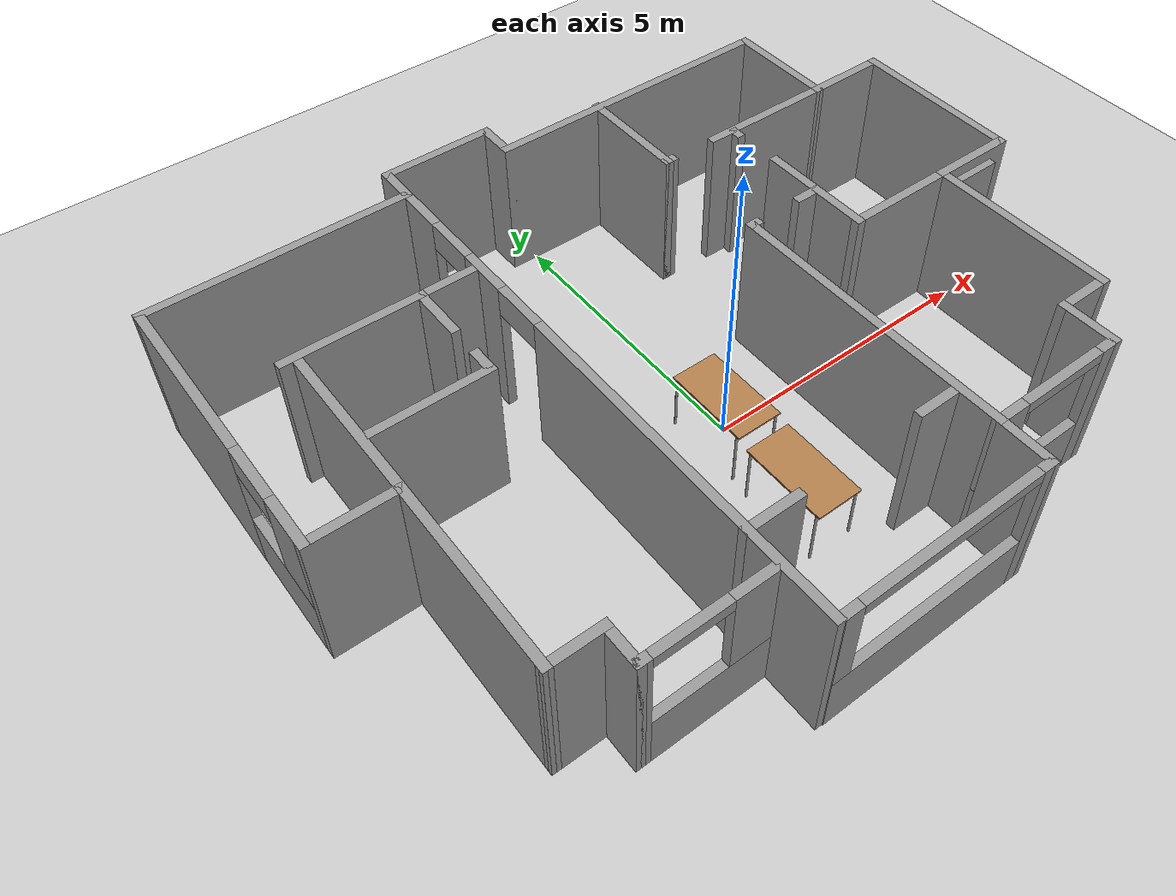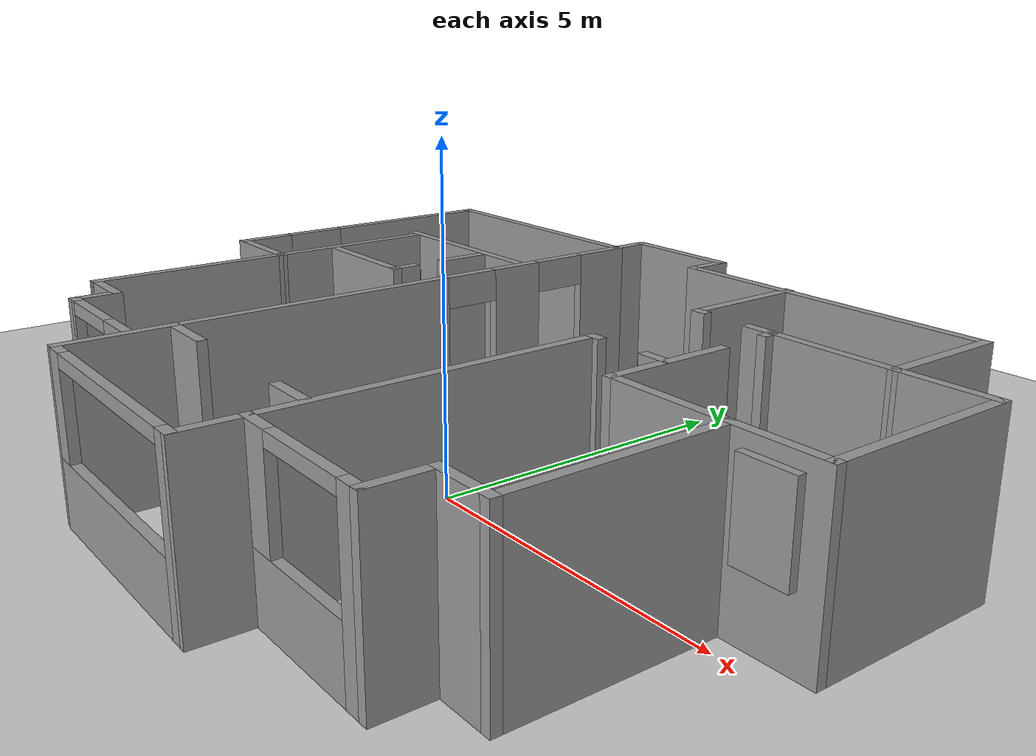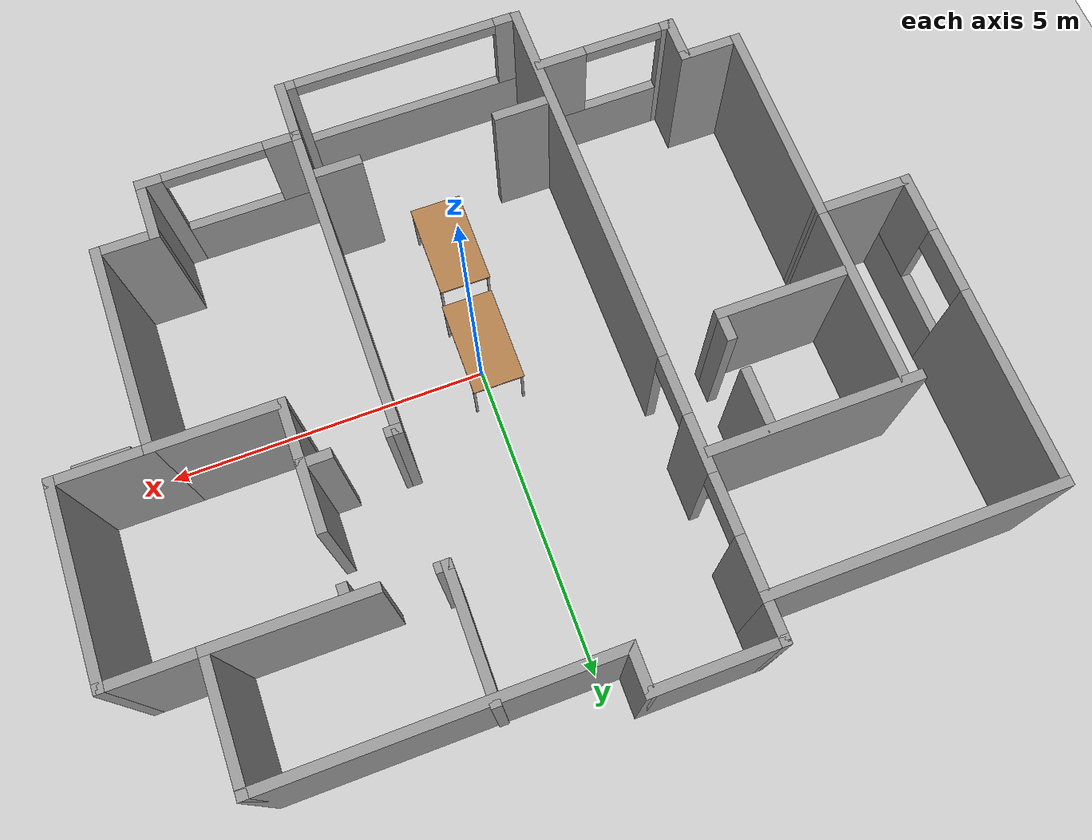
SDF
<sdf version="1.7">
 <world name="default">
  <light name="sun" type="directional">
   <pose>0 0 10 0 -0 0</pose>
   <diffuse>0.8 0.8 0.8 1</diffuse>
   <specular>0.2 0.2 0.2 1</specular>
   <attenuation>
    <range>1000</range>
    <constant>0.9</constant>
    <linear>0.01</linear>
    <quadratic>0.001</quadratic>
   </attenuation>
   <direction>-0.5 0.1 -0.9</direction>
   <spot><inner_angle>0</inner_angle><outer_angle>0</outer_angle><falloff>0</falloff></spot>
  </light>
  <model name="ground_plane">
   <static>1</static>
   <link name="link">
    <collision name="collision">
     <geometry><plane><normal>0 0 1</normal><size>100 100</size></plane></geometry>
     <surface>
      <contact><collide_bitmask>65535</collide_bitmask></contact>
      <friction><ode><mu>100</mu><mu2>50</mu2></ode></friction>
     </surface>
    </collision>
    <visual name="visual">
     <cast_shadows>0</cast_shadows>
     <geometry><plane><normal>0 0 1</normal><size>100 100</size></plane></geometry>
     <material>
      <script><uri>file://media/materials/scripts/gazebo.material</uri><name>Gazebo/Grey</name></script>
     </material>
    </visual>
   </link>
  </model>
  <gravity>0 0 -9.8</gravity>
  <magnetic_field>6e-06 2.3e-05 -4.2e-05</magnetic_field>
  <atmosphere type="adiabatic"/>
  <physics type="ode">
   <max_step_size>0.001</max_step_size>
   <real_time_factor>1</real_time_factor>
   <real_time_update_rate>1000</real_time_update_rate>
  </physics>
  <scene><ambient>0.4 0.4 0.4 1</ambient><background>0.7 0.7 0.7 1</background><shadows>1</shadows></scene>
  <spherical_coordinates>
   <surface_model>EARTH_WGS84</surface_model>
   <latitude_deg>0</latitude_deg>
   <longitude_deg>0</longitude_deg>
   <elevation>0</elevation>
   <heading_deg>0</heading_deg>
  </spherical_coordinates>
  <model name="room1">
   <pose>-0.261732 0.632607 0 0 -0 0</pose>
   <link name="Wall_0">
    <collision name="Wall_0_Collision">
     <geometry><box><size>4.5 0.15 2.5</size></box></geometry>
     <pose>0 0 1.25 0 -0 0</pose>
    </collision>
    <visual name="Wall_0_Visual">
     <pose>0 0 1.25 0 -0 0</pose>
     <geometry><box><size>4.5 0.15 2.5</size></box></geometry>
     <material>
      <script><uri>file://media/materials/scripts/gazebo.material</uri><name>Gazebo/Grey</name></script>
      <ambient>1 1 1 1</ambient>
     </material>
     <meta><layer>0</layer></meta>
    </visual>
    <pose>-4.14998 4.45739 0 0 -0 0</pose>
   </link>
   <link name="Wall_1">
    <collision name="Wall_1_Collision">
     <geometry><box><size>0.75 0.15 2.5</size></box></geometry>
     <pose>0 0 1.25 0 -0 0</pose>
    </collision>
    <visual name="Wall_1_Visual">
     <pose>0 0 1.25 0 -0 0</pose>
     <geometry><box><size>0.75 0.15 2.5</size></box></geometry>
     <material>
      <script><uri>file://media/materials/scripts/gazebo.material</uri><name>Gazebo/Grey</name></script>
      <ambient>1 1 1 1</ambient>
     </material>
     <meta><layer>0</layer></meta>
    </visual>
    <pose>-1.97498 4.75739 0 0 -0 1.5708</pose>
   </link>
   <link name="Wall_10">
    <collision name="Wall_10_Collision">
     <geometry><box><size>1 0.15 2.5</size></box></geometry>
     <pose>0 0 1.25 0 -0 0</pose>
    </collision>
    <visual name="Wall_10_Visual">
     <pose>0 0 1.25 0 -0 0</pose>
     <geometry><box><size>1 0.15 2.5</size></box></geometry>
     <material>
      <script><uri>file://media/materials/scripts/gazebo.material</uri><name>Gazebo/Grey</name></script>
      <ambient>1 1 1 1</ambient>
     </material>
     <meta><layer>0</layer></meta>
    </visual>
    <pose>4.55002 -3.34261 0 0 -0 3.14159</pose>
   </link>
   <link name="Wall_11">
    <collision name="Wall_11_Collision">
     <geometry><box><size>1 0.15 2.5</size></box></geometry>
     <pose>0 0 1.25 0 -0 0</pose>
    </collision>
    <visual name="Wall_11_Visual">
     <pose>0 0 1.25 0 -0 0</pose>
     <geometry><box><size>1 0.15 2.5</size></box></geometry>
     <material>
      <script><uri>file://media/materials/scripts/gazebo.material</uri><name>Gazebo/Grey</name></script>
      <ambient>1 1 1 1</ambient>
     </material>
     <meta><layer>0</layer></meta>
    </visual>
    <pose>4.12502 -3.76762 0 0 -0 -1.5708</pose>
   </link>
   <link name="Wall_12">
    <pose>2.95002 -4.19261 0 0 -0 3.14159</pose>
    <visual name="Wall_12_Visual_0">
     <pose>-1.05204 0 1.25 0 -0 0</pose>
     <geometry><box><size>0.395914 0.15 2.5</size></box></geometry>
     <material>
      <script><uri>file://media/materials/scripts/gazebo.material</uri><name>Gazebo/Grey</name></script>
      <ambient>1 1 1 1</ambient>
     </material>
     <meta><layer>0</layer></meta>
    </visual>
    <collision name="Wall_12_Collision_0">
     <geometry><box><size>0.395914 0.15 2.5</size></box></geometry>
     <pose>-1.05204 0 1.25 0 -0 0</pose>
    </collision>
    <visual name="Wall_12_Visual_1">
     <pose>0.197957 0 0.5 0 -0 0</pose>
     <geometry><box><size>2.10409 0.15 1</size></box></geometry>
     <material>
      <script><uri>file://media/materials/scripts/gazebo.material</uri><name>Gazebo/Grey</name></script>
      <ambient>1 1 1 1</ambient>
     </material>
     <meta><layer>0</layer></meta>
    </visual>
    <collision name="Wall_12_Collision_1">
     <geometry><box><size>2.10409 0.15 1</size></box></geometry>
     <pose>0.197957 0 0.5 0 -0 0</pose>
    </collision>
    <visual name="Wall_12_Visual_2">
     <pose>0.961644 0 1.75 0 -0 0</pose>
     <geometry><box><size>0.576711 0.15 1.5</size></box></geometry>
     <material>
      <script><uri>file://media/materials/scripts/gazebo.material</uri><name>Gazebo/Grey</name></script>
      <ambient>1 1 1 1</ambient>
     </material>
     <meta><layer>0</layer></meta>
    </visual>
    <collision name="Wall_12_Collision_2">
     <geometry><box><size>0.576711 0.15 1.5</size></box></geometry>
     <pose>0.961644 0 1.75 0 -0 0</pose>
    </collision>
    <visual name="Wall_12_Visual_3">
     <pose>-0.090399 0 2.4 0 -0 0</pose>
     <geometry><box><size>1.52737 0.15 0.2</size></box></geometry>
     <material>
      <script><uri>file://media/materials/scripts/gazebo.material</uri><name>Gazebo/Grey</name></script>
      <ambient>1 1 1 1</ambient>
     </material>
     <meta><layer>0</layer></meta>
    </visual>
    <collision name="Wall_12_Collision_3">
     <geometry><box><size>1.52737 0.15 0.2</size></box></geometry>
     <pose>-0.090399 0 2.4 0 -0 0</pose>
    </collision>
   </link>
   <link name="Wall_13">
    <collision name="Wall_13_Collision">
     <geometry><box><size>5 0.15 2.5</size></box></geometry>
     <pose>0 0 1.25 0 -0 0</pose>
    </collision>
    <visual name="Wall_13_Visual">
     <pose>0 0 1.25 0 -0 0</pose>
     <geometry><box><size>5 0.15 2.5</size></box></geometry>
     <material>
      <script><uri>file://media/materials/scripts/gazebo.material</uri><name>Gazebo/Grey</name></script>
      <ambient>1 1 1 1</ambient>
     </material>
     <meta><layer>0</layer></meta>
    </visual>
    <pose>1.77502 -1.76761 0 0 -0 1.5708</pose>
   </link>
   <link name="Wall_14">
    <collision name="Wall_14_Collision">
     <geometry><box><size>0.25 0.15 2.5</size></box></geometry>
     <pose>0 0 1.25 0 -0 0</pose>
    </collision>
    <visual name="Wall_14_Visual">
     <pose>0 0 1.25 0 -0 0</pose>
     <geometry><box><size>0.25 0.15 2.5</size></box></geometry>
     <material>
      <script><uri>file://media/materials/scripts/gazebo.material</uri><name>Gazebo/Grey</name></script>
      <ambient>1 1 1 1</ambient>
     </material>
     <meta><layer>0</layer></meta>
    </visual>
    <pose>1.82502 0.657385 0 0 -0 0</pose>
   </link>
   <link name="Wall_16">
    <collision name="Wall_16_Collision">
     <geometry><box><size>2 0.15 2.5</size></box></geometry>
     <pose>0 0 1.25 0 -0 0</pose>
    </collision>
    <visual name="Wall_16_Visual">
     <pose>0 0 1.25 0 -0 0</pose>
     <geometry><box><size>2 0.15 2.5</size></box></geometry>
     <material>
      <script><uri>file://media/materials/scripts/gazebo.material</uri><name>Gazebo/Grey</name></script>
      <ambient>1 1 1 1</ambient>
     </material>
     <meta><layer>0</layer></meta>
    </visual>
    <pose>1.72806 3.56594 0 0 -0 -1.5708</pose>
   </link>
   <link name="Wall_17">
    <collision name="Wall_17_Collision">
     <geometry><box><size>0.25 0.15 2.5</size></box></geometry>
     <pose>0 0 1.25 0 -0 0</pose>
    </collision>
    <visual name="Wall_17_Visual">
     <pose>0 0 1.25 0 -0 0</pose>
     <geometry><box><size>0.25 0.15 2.5</size></box></geometry>
     <material>
      <script><uri>file://media/materials/scripts/gazebo.material</uri><name>Gazebo/Grey</name></script>
      <ambient>1 1 1 1</ambient>
     </material>
     <meta><layer>0</layer></meta>
    </visual>
    <pose>1.77807 2.64094 0 0 -0 0</pose>
   </link>
   <link name="Wall_19">
    <collision name="Wall_19_Collision">
     <geometry><box><size>2.43884 0.15 2.5</size></box></geometry>
     <pose>0 0 1.25 0 -0 0</pose>
    </collision>
    <visual name="Wall_19_Visual">
     <pose>0 0 1.25 0 -0 0</pose>
     <geometry><box><size>2.43884 0.15 2.5</size></box></geometry>
     <material>
      <script><uri>file://media/materials/scripts/gazebo.material</uri><name>Gazebo/Grey</name></script>
      <ambient>1 1 1 1</ambient>
     </material>
     <meta><layer>0</layer></meta>
    </visual>
    <pose>3.83062 2.61382 0 0 -0 -0.005626</pose>
   </link>
   <link name="Wall_2">
    <collision name="Wall_2_Collision">
     <geometry><box><size>2 0.15 2.5</size></box></geometry>
     <pose>0 0 1.25 0 -0 0</pose>
    </collision>
    <visual name="Wall_2_Visual">
     <pose>0 0 1.25 0 -0 0</pose>
     <geometry><box><size>2 0.15 2.5</size></box></geometry>
     <material>
      <script><uri>file://media/materials/scripts/gazebo.material</uri><name>Gazebo/Grey</name></script>
      <ambient>1 1 1 1</ambient>
     </material>
     <meta><layer>0</layer></meta>
    </visual>
    <pose>-1.04998 5.05739 0 0 -0 0</pose>
   </link>
   <link name="Wall_21">
    <collision name="Wall_21_Collision">
     <geometry><box><size>2 0.15 2.5</size></box></geometry>
     <pose>0 0 1.25 0 -0 0</pose>
    </collision>
    <visual name="Wall_21_Visual">
     <pose>0 0 1.25 0 -0 0</pose>
     <geometry><box><size>2 0.15 2.5</size></box></geometry>
     <material>
      <script><uri>file://media/materials/scripts/gazebo.material</uri><name>Gazebo/Grey</name></script>
      <ambient>1 1 1 1</ambient>
     </material>
     <meta><layer>0</layer></meta>
    </visual>
    <pose>4.05002 -0.242615 0 0 -0 3.14159</pose>
   </link>
   <link name="Wall_22">
    <collision name="Wall_22_Collision">
     <geometry><box><size>2 0.15 2.5</size></box></geometry>
     <pose>0 0 1.25 0 -0 0</pose>
    </collision>
    <visual name="Wall_22_Visual">
     <pose>0 0 1.25 0 -0 0</pose>
     <geometry><box><size>2 0.15 2.5</size></box></geometry>
     <material>
      <script><uri>file://media/materials/scripts/gazebo.material</uri><name>Gazebo/Grey</name></script>
      <ambient>1 1 1 1</ambient>
     </material>
     <meta><layer>0</layer></meta>
    </visual>
    <pose>3.12502 0.682385 0 0 -0 1.5708</pose>
   </link>
   <link name="Wall_25">
    <collision name="Wall_25_Collision">
     <geometry><box><size>0.25 0.15 2.5</size></box></geometry>
     <pose>0 0 1.25 0 -0 0</pose>
    </collision>
    <visual name="Wall_25_Visual">
     <pose>0 0 1.25 0 -0 0</pose>
     <geometry><box><size>0.25 0.15 2.5</size></box></geometry>
     <material>
      <script><uri>file://media/materials/scripts/gazebo.material</uri><name>Gazebo/Grey</name></script>
      <ambient>1 1 1 1</ambient>
     </material>
     <meta><layer>0</layer></meta>
    </visual>
    <pose>3.08578 2.51896 0 0 -0 -1.5708</pose>
   </link>
   <link name="Wall_27">
    <collision name="Wall_27_Collision">
     <geometry><box><size>0.5 0.15 2.5</size></box></geometry>
     <pose>0 0 1.25 0 -0 0</pose>
    </collision>
    <visual name="Wall_27_Visual">
     <pose>0 0 1.25 0 -0 0</pose>
     <geometry><box><size>0.5 0.15 2.5</size></box></geometry>
     <material>
      <script><uri>file://media/materials/scripts/gazebo.material</uri><name>Gazebo/Grey</name></script>
      <ambient>1 1 1 1</ambient>
     </material>
     <meta><layer>0</layer></meta>
    </visual>
    <pose>2.93369 0.6713 0 0 -0 0</pose>
   </link>
   <link name="Wall_29">
    <collision name="Wall_29_Collision">
     <geometry><box><size>1.01414 0.15 2.5</size></box></geometry>
     <pose>0 0 1.25 0 -0 0</pose>
    </collision>
    <visual name="Wall_29_Visual">
     <pose>0 0 1.25 0 -0 0</pose>
     <geometry><box><size>1.01414 0.15 2.5</size></box></geometry>
     <material>
      <script><uri>file://media/materials/scripts/gazebo.material</uri><name>Gazebo/Grey</name></script>
      <ambient>1 1 1 1</ambient>
     </material>
     <meta><layer>0</layer></meta>
    </visual>
    <pose>1.76841 -4.62423 0 0 -0 -1.58612</pose>
   </link>
   <link name="Wall_3">
    <collision name="Wall_3_Collision">
     <geometry><box><size>0.75 0.15 2.5</size></box></geometry>
     <pose>0 0 1.25 0 -0 0</pose>
    </collision>
    <visual name="Wall_3_Visual">
     <pose>0 0 1.25 0 -0 0</pose>
     <geometry><box><size>0.75 0.15 2.5</size></box></geometry>
     <material>
      <script><uri>file://media/materials/scripts/gazebo.material</uri><name>Gazebo/Grey</name></script>
      <ambient>1 1 1 1</ambient>
     </material>
     <meta><layer>0</layer></meta>
    </visual>
    <pose>-0.124979 4.75739 0 0 -0 -1.5708</pose>
   </link>
   <link name="Wall_30">
    <pose>-0.051429 -5.05584 0 0 -0 3.14159</pose>
    <visual name="Wall_30_Visual_0">
     <pose>-1.73453 0 1.25 0 -0 0</pose>
     <geometry><box><size>0.280939 0.15 2.5</size></box></geometry>
     <material>
      <script><uri>file://media/materials/scripts/gazebo.material</uri><name>Gazebo/Grey</name></script>
      <ambient>1 1 1 1</ambient>
     </material>
     <meta><layer>0</layer></meta>
    </visual>
    <collision name="Wall_30_Collision_0">
     <geometry><box><size>0.280939 0.15 2.5</size></box></geometry>
     <pose>-1.73453 0 1.25 0 -0 0</pose>
    </collision>
    <visual name="Wall_30_Visual_1">
     <pose>0.140469 0 0.5 0 -0 0</pose>
     <geometry><box><size>3.46906 0.15 1</size></box></geometry>
     <material>
      <script><uri>file://media/materials/scripts/gazebo.material</uri><name>Gazebo/Grey</name></script>
      <ambient>1 1 1 1</ambient>
     </material>
     <meta><layer>0</layer></meta>
    </visual>
    <collision name="Wall_30_Collision_1">
     <geometry><box><size>3.46906 0.15 1</size></box></geometry>
     <pose>0.140469 0 0.5 0 -0 0</pose>
    </collision>
    <visual name="Wall_30_Visual_2">
     <pose>1.71749 0 1.75 0 -0 0</pose>
     <geometry><box><size>0.315011 0.15 1.5</size></box></geometry>
     <material>
      <script><uri>file://media/materials/scripts/gazebo.material</uri><name>Gazebo/Grey</name></script>
      <ambient>1 1 1 1</ambient>
     </material>
     <meta><layer>0</layer></meta>
    </visual>
    <collision name="Wall_30_Collision_2">
     <geometry><box><size>0.315011 0.15 1.5</size></box></geometry>
     <pose>1.71749 0 1.75 0 -0 0</pose>
    </collision>
    <visual name="Wall_30_Visual_3">
     <pose>-0.017036 0 2.4 0 -0 0</pose>
     <geometry><box><size>3.15405 0.15 0.2</size></box></geometry>
     <material>
      <script><uri>file://media/materials/scripts/gazebo.material</uri><name>Gazebo/Grey</name></script>
      <ambient>1 1 1 1</ambient>
     </material>
     <meta><layer>0</layer></meta>
    </visual>
    <collision name="Wall_30_Collision_3">
     <geometry><box><size>3.15405 0.15 0.2</size></box></geometry>
     <pose>-0.017036 0 2.4 0 -0 0</pose>
    </collision>
   </link>
   <link name="Wall_34">
    <pose>-1.97498 -0.292615 0 0 -0 -1.5708</pose>
    <visual name="Wall_34_Visual_0">
     <pose>-4.36028 0 1.25 0 -0 0</pose>
     <geometry><box><size>0.929432 0.15 2.5</size></box></geometry>
     <material>
      <script><uri>file://media/materials/scripts/gazebo.material</uri><name>Gazebo/Grey</name></script>
      <ambient>1 1 1 1</ambient>
     </material>
     <meta><layer>0</layer></meta>
    </visual>
    <collision name="Wall_34_Collision_0">
     <geometry><box><size>0.929432 0.15 2.5</size></box></geometry>
     <pose>-4.36028 0 1.25 0 -0 0</pose>
    </collision>
    <visual name="Wall_34_Visual_1">
     <pose>-2.55501 0 1.25 0 -0 0</pose>
     <geometry><box><size>0.881111 0.15 2.5</size></box></geometry>
     <material>
      <script><uri>file://media/materials/scripts/gazebo.material</uri><name>Gazebo/Grey</name></script>
      <ambient>1 1 1 1</ambient>
     </material>
     <meta><layer>0</layer></meta>
    </visual>
    <collision name="Wall_34_Collision_1">
     <geometry><box><size>0.881111 0.15 2.5</size></box></geometry>
     <pose>-2.55501 0 1.25 0 -0 0</pose>
    </collision>
    <visual name="Wall_34_Visual_2">
     <pose>1.80527 0 1.25 0 -0 0</pose>
     <geometry><box><size>6.03946 0.15 2.5</size></box></geometry>
     <material>
      <script><uri>file://media/materials/scripts/gazebo.material</uri><name>Gazebo/Grey</name></script>
      <ambient>1 1 1 1</ambient>
     </material>
     <meta><layer>0</layer></meta>
    </visual>
    <collision name="Wall_34_Collision_2">
     <geometry><box><size>6.03946 0.15 2.5</size></box></geometry>
     <pose>1.80527 0 1.25 0 -0 0</pose>
    </collision>
    <visual name="Wall_34_Visual_3">
     <pose>-3.44557 0 2.25 0 -0 0</pose>
     <geometry><box><size>0.9 0.15 0.5</size></box></geometry>
     <material>
      <script><uri>file://media/materials/scripts/gazebo.material</uri><name>Gazebo/Grey</name></script>
      <ambient>1 1 1 1</ambient>
     </material>
     <meta><layer>0</layer></meta>
    </visual>
    <collision name="Wall_34_Collision_3">
     <geometry><box><size>0.9 0.15 0.5</size></box></geometry>
     <pose>-3.44557 0 2.25 0 -0 0</pose>
    </collision>
    <visual name="Wall_34_Visual_4">
     <pose>-1.66446 0 2.25 0 -0 0</pose>
     <geometry><box><size>0.9 0.15 0.5</size></box></geometry>
     <material>
      <script><uri>file://media/materials/scripts/gazebo.material</uri><name>Gazebo/Grey</name></script>
      <ambient>1 1 1 1</ambient>
     </material>
     <meta><layer>0</layer></meta>
    </visual>
    <collision name="Wall_34_Collision_4">
     <geometry><box><size>0.9 0.15 0.5</size></box></geometry>
     <pose>-1.66446 0 2.25 0 -0 0</pose>
    </collision>
   </link>
   <link name="Wall_36">
    <collision name="Wall_36_Collision">
     <geometry><box><size>1 0.15 2.5</size></box></geometry>
     <pose>0 0 1.25 0 -0 0</pose>
    </collision>
    <visual name="Wall_36_Visual">
     <pose>0 0 1.25 0 -0 0</pose>
     <geometry><box><size>1 0.15 2.5</size></box></geometry>
     <material>
      <script><uri>file://media/materials/scripts/gazebo.material</uri><name>Gazebo/Grey</name></script>
      <ambient>1 1 1 1</ambient>
     </material>
     <meta><layer>0</layer></meta>
    </visual>
    <pose>-1.552 -3.4818 0 0 -0 0</pose>
   </link>
   <link name="Wall_38">
    <collision name="Wall_38_Collision">
     <geometry><box><size>0.75 0.15 2.5</size></box></geometry>
     <pose>0 0 1.25 0 -0 0</pose>
    </collision>
    <visual name="Wall_38_Visual">
     <pose>0 0 1.25 0 -0 0</pose>
     <geometry><box><size>0.75 0.15 2.5</size></box></geometry>
     <material>
      <script><uri>file://media/materials/scripts/gazebo.material</uri><name>Gazebo/Grey</name></script>
      <ambient>1 1 1 1</ambient>
     </material>
     <meta><layer>0</layer></meta>
    </visual>
    <pose>1.36015 -3.4818 0 0 -0 0</pose>
   </link>
   <link name="Wall_4">
    <collision name="Wall_4_Collision">
     <geometry><box><size>5.25 0.15 2.5</size></box></geometry>
     <pose>0 0 1.25 0 -0 0</pose>
    </collision>
    <visual name="Wall_4_Visual">
     <pose>0 0 1.25 0 -0 0</pose>
     <geometry><box><size>5.25 0.15 2.5</size></box></geometry>
     <material>
      <script><uri>file://media/materials/scripts/gazebo.material</uri><name>Gazebo/Grey</name></script>
      <ambient>1 1 1 1</ambient>
     </material>
     <meta><layer>0</layer></meta>
    </visual>
    <pose>2.42502 4.45739 0 0 -0 0</pose>
   </link>
   <link name="Wall_40">
    <pose>-6.32498 2.03239 0 0 -0 -1.5708</pose>
    <visual name="Wall_40_Visual_0">
     <pose>-0.973119 0 1.25 0 -0 0</pose>
     <geometry><box><size>3.05376 0.15 2.5</size></box></geometry>
     <material>
      <script><uri>file://media/materials/scripts/gazebo.material</uri><name>Gazebo/Grey</name></script>
      <ambient>1 1 1 1</ambient>
     </material>
     <meta><layer>0</layer></meta>
    </visual>
    <collision name="Wall_40_Collision_0">
     <geometry><box><size>3.05376 0.15 2.5</size></box></geometry>
     <pose>-0.973119 0 1.25 0 -0 0</pose>
    </collision>
    <visual name="Wall_40_Visual_1">
     <pose>1.52688 0 0.5 0 -0 0</pose>
     <geometry><box><size>1.94624 0.15 1</size></box></geometry>
     <material>
      <script><uri>file://media/materials/scripts/gazebo.material</uri><name>Gazebo/Grey</name></script>
      <ambient>1 1 1 1</ambient>
     </material>
     <meta><layer>0</layer></meta>
    </visual>
    <collision name="Wall_40_Collision_1">
     <geometry><box><size>1.94624 0.15 1</size></box></geometry>
     <pose>1.52688 0 0.5 0 -0 0</pose>
    </collision>
    <visual name="Wall_40_Visual_2">
     <pose>2.02688 0 1.75 0 -0 0</pose>
     <geometry><box><size>0.946237 0.15 1.5</size></box></geometry>
     <material>
      <script><uri>file://media/materials/scripts/gazebo.material</uri><name>Gazebo/Grey</name></script>
      <ambient>1 1 1 1</ambient>
     </material>
     <meta><layer>0</layer></meta>
    </visual>
    <collision name="Wall_40_Collision_2">
     <geometry><box><size>0.946237 0.15 1.5</size></box></geometry>
     <pose>2.02688 0 1.75 0 -0 0</pose>
    </collision>
    <visual name="Wall_40_Visual_3">
     <pose>1.05376 0 2.25 0 -0 0</pose>
     <geometry><box><size>1 0.15 0.5</size></box></geometry>
     <material>
      <script><uri>file://media/materials/scripts/gazebo.material</uri><name>Gazebo/Grey</name></script>
      <ambient>1 1 1 1</ambient>
     </material>
     <meta><layer>0</layer></meta>
    </visual>
    <collision name="Wall_40_Collision_3">
     <geometry><box><size>1 0.15 0.5</size></box></geometry>
     <pose>1.05376 0 2.25 0 -0 0</pose>
    </collision>
   </link>
   <link name="Wall_41">
    <collision name="Wall_41_Collision">
     <geometry><box><size>1.51529 0.15 2.5</size></box></geometry>
     <pose>0 0 1.25 0 -0 0</pose>
    </collision>
    <visual name="Wall_41_Visual">
     <pose>0 0 1.25 0 -0 0</pose>
     <geometry><box><size>1.51529 0.15 2.5</size></box></geometry>
     <material>
      <script><uri>file://media/materials/scripts/gazebo.material</uri><name>Gazebo/Grey</name></script>
      <ambient>1 1 1 1</ambient>
     </material>
     <meta><layer>0</layer></meta>
    </visual>
    <pose>-5.64238 -0.392615 0 0 -0 0</pose>
   </link>
   <link name="Wall_42">
    <collision name="Wall_42_Collision">
     <geometry><box><size>3.25004 0.15 2.5</size></box></geometry>
     <pose>0 0 1.25 0 -0 0</pose>
    </collision>
    <visual name="Wall_42_Visual">
     <pose>0 0 1.25 0 -0 0</pose>
     <geometry><box><size>3.25004 0.15 2.5</size></box></geometry>
     <material>
      <script><uri>file://media/materials/scripts/gazebo.material</uri><name>Gazebo/Grey</name></script>
      <ambient>1 1 1 1</ambient>
     </material>
     <meta><layer>0</layer></meta>
    </visual>
    <pose>-4.96737 -1.94261 0 0 -0 -1.5757</pose>
   </link>
   <link name="Wall_43">
    <collision name="Wall_43_Collision">
     <geometry><box><size>1 0.15 2.5</size></box></geometry>
     <pose>0 0 1.25 0 -0 0</pose>
    </collision>
    <visual name="Wall_43_Visual">
     <pose>0 0 1.25 0 -0 0</pose>
     <geometry><box><size>1 0.15 2.5</size></box></geometry>
     <material>
      <script><uri>file://media/materials/scripts/gazebo.material</uri><name>Gazebo/Grey</name></script>
      <ambient>1 1 1 1</ambient>
     </material>
     <meta><layer>0</layer></meta>
    </visual>
    <pose>-4.54998 -3.49261 0 0 -0 0</pose>
   </link>
   <link name="Wall_44">
    <collision name="Wall_44_Collision">
     <geometry><box><size>0.75 0.15 2.5</size></box></geometry>
     <pose>0 0 1.25 0 -0 0</pose>
    </collision>
    <visual name="Wall_44_Visual">
     <pose>0 0 1.25 0 -0 0</pose>
     <geometry><box><size>0.75 0.15 2.5</size></box></geometry>
     <material>
      <script><uri>file://media/materials/scripts/gazebo.material</uri><name>Gazebo/Grey</name></script>
      <ambient>1 1 1 1</ambient>
     </material>
     <meta><layer>0</layer></meta>
    </visual>
    <pose>-4.12498 -3.79262 0 0 -0 -1.5708</pose>
   </link>
   <link name="Wall_45">
    <pose>-3.07498 -4.09262 0 0 -0 0</pose>
    <visual name="Wall_45_Visual_0">
     <pose>-1.00774 0 1.25 0 -0 0</pose>
     <geometry><box><size>0.234511 0.15 2.5</size></box></geometry>
     <material>
      <script><uri>file://media/materials/scripts/gazebo.material</uri><name>Gazebo/Grey</name></script>
      <ambient>1 1 1 1</ambient>
     </material>
     <meta><layer>0</layer></meta>
    </visual>
    <collision name="Wall_45_Collision_0">
     <geometry><box><size>0.234511 0.15 2.5</size></box></geometry>
     <pose>-1.00774 0 1.25 0 -0 0</pose>
    </collision>
    <visual name="Wall_45_Visual_1">
     <pose>0.117256 0 0.5 0 -0 0</pose>
     <geometry><box><size>2.01549 0.15 1</size></box></geometry>
     <material>
      <script><uri>file://media/materials/scripts/gazebo.material</uri><name>Gazebo/Grey</name></script>
      <ambient>1 1 1 1</ambient>
     </material>
     <meta><layer>0</layer></meta>
    </visual>
    <collision name="Wall_45_Collision_1">
     <geometry><box><size>2.01549 0.15 1</size></box></geometry>
     <pose>0.117256 0 0.5 0 -0 0</pose>
    </collision>
    <visual name="Wall_45_Visual_2">
     <pose>0.728856 0 1.75 0 -0 0</pose>
     <geometry><box><size>0.792289 0.15 1.5</size></box></geometry>
     <material>
      <script><uri>file://media/materials/scripts/gazebo.material</uri><name>Gazebo/Grey</name></script>
      <ambient>1 1 1 1</ambient>
     </material>
     <meta><layer>0</layer></meta>
    </visual>
    <collision name="Wall_45_Collision_2">
     <geometry><box><size>0.792289 0.15 1.5</size></box></geometry>
     <pose>0.728856 0 1.75 0 -0 0</pose>
    </collision>
    <visual name="Wall_45_Visual_3">
     <pose>-0.278889 0 2.4 0 -0 0</pose>
     <geometry><box><size>1.2232 0.15 0.2</size></box></geometry>
     <material>
      <script><uri>file://media/materials/scripts/gazebo.material</uri><name>Gazebo/Grey</name></script>
      <ambient>1 1 1 1</ambient>
     </material>
     <meta><layer>0</layer></meta>
    </visual>
    <collision name="Wall_45_Collision_3">
     <geometry><box><size>1.2232 0.15 0.2</size></box></geometry>
     <pose>-0.278889 0 2.4 0 -0 0</pose>
    </collision>
   </link>
   <link name="Wall_47">
    <collision name="Wall_47_Collision">
     <geometry><box><size>3.25 0.15 2.5</size></box></geometry>
     <pose>0 0 1.25 0 -0 0</pose>
    </collision>
    <visual name="Wall_47_Visual">
     <pose>0 0 1.25 0 -0 0</pose>
     <geometry><box><size>3.25 0.15 2.5</size></box></geometry>
     <material>
      <script><uri>file://media/materials/scripts/gazebo.material</uri><name>Gazebo/Grey</name></script>
      <ambient>1 1 1 1</ambient>
     </material>
     <meta><layer>0</layer></meta>
    </visual>
    <pose>-3.61708 2.41019 0 0 -0 0</pose>
   </link>
   <link name="Wall_5">
    <collision name="Wall_5_Collision">
     <geometry><box><size>2 0.15 2.5</size></box></geometry>
     <pose>0 0 1.25 0 -0 0</pose>
    </collision>
    <visual name="Wall_5_Visual">
     <pose>0 0 1.25 0 -0 0</pose>
     <geometry><box><size>2 0.15 2.5</size></box></geometry>
     <material>
      <script><uri>file://media/materials/scripts/gazebo.material</uri><name>Gazebo/Grey</name></script>
      <ambient>1 1 1 1</ambient>
     </material>
     <meta><layer>0</layer></meta>
    </visual>
    <pose>4.97502 3.53239 0 0 -0 -1.5708</pose>
   </link>
   <link name="Wall_50">
    <collision name="Wall_50_Collision">
     <geometry><box><size>2.9 0.15 2.5</size></box></geometry>
     <pose>0 0 1.25 0 -0 0</pose>
    </collision>
    <visual name="Wall_50_Visual">
     <pose>0 0 1.25 0 -0 0</pose>
     <geometry><box><size>2.9 0.15 2.5</size></box></geometry>
     <material>
      <script><uri>file://media/materials/scripts/gazebo.material</uri><name>Gazebo/Grey</name></script>
      <ambient>1 1 1 1</ambient>
     </material>
     <meta><layer>0</layer></meta>
    </visual>
    <pose>-4.95977 0.982385 0 0 -0 1.5708</pose>
   </link>
   <link name="Wall_52">
    <collision name="Wall_52_Collision">
     <geometry><box><size>1 0.15 2.5</size></box></geometry>
     <pose>0 0 1.25 0 -0 0</pose>
    </collision>
    <visual name="Wall_52_Visual">
     <pose>0 0 1.25 0 -0 0</pose>
     <geometry><box><size>1 0.15 2.5</size></box></geometry>
     <material>
      <script><uri>file://media/materials/scripts/gazebo.material</uri><name>Gazebo/Grey</name></script>
      <ambient>1 1 1 1</ambient>
     </material>
     <meta><layer>0</layer></meta>
    </visual>
    <pose>-2.97283 1.97697 0 0 -0 -1.5708</pose>
   </link>
   <link name="Wall_54">
    <collision name="Wall_54_Collision">
     <geometry><box><size>0.5 0.15 2.5</size></box></geometry>
     <pose>0 0 1.25 0 -0 0</pose>
    </collision>
    <visual name="Wall_54_Visual">
     <pose>0 0 1.25 0 -0 0</pose>
     <geometry><box><size>0.5 0.15 2.5</size></box></geometry>
     <material>
      <script><uri>file://media/materials/scripts/gazebo.material</uri><name>Gazebo/Grey</name></script>
      <ambient>1 1 1 1</ambient>
     </material>
     <meta><layer>0</layer></meta>
    </visual>
    <pose>-2.97283 0.786973 0 0 -0 -1.5708</pose>
   </link>
   <link name="Wall_55">
    <collision name="Wall_55_Collision">
     <geometry><box><size>2 0.15 2.5</size></box></geometry>
     <pose>0 0 1.25 0 -0 0</pose>
    </collision>
    <visual name="Wall_55_Visual">
     <pose>0 0 1.25 0 -0 0</pose>
     <geometry><box><size>2 0.15 2.5</size></box></geometry>
     <material>
      <script><uri>file://media/materials/scripts/gazebo.material</uri><name>Gazebo/Grey</name></script>
      <ambient>1 1 1 1</ambient>
     </material>
     <meta><layer>0</layer></meta>
    </visual>
    <pose>-3.89783 0.611973 0 0 -0 3.14159</pose>
   </link>
   <link name="Wall_6">
    <collision name="Wall_6_Collision">
     <geometry><box><size>1.5 0.15 2.5</size></box></geometry>
     <pose>0 0 1.25 0 -0 0</pose>
    </collision>
    <visual name="Wall_6_Visual">
     <pose>0 0 1.25 0 -0 0</pose>
     <geometry><box><size>1.5 0.15 2.5</size></box></geometry>
     <material>
      <script><uri>file://media/materials/scripts/gazebo.material</uri><name>Gazebo/Grey</name></script>
      <ambient>1 1 1 1</ambient>
     </material>
     <meta><layer>0</layer></meta>
    </visual>
    <pose>5.65002 2.60738 0 0 -0 0</pose>
   </link>
   <link name="Wall_7">
    <collision name="Wall_7_Collision">
     <geometry><box><size>3 0.15 2.5</size></box></geometry>
     <pose>0 0 1.25 0 -0 0</pose>
    </collision>
    <visual name="Wall_7_Visual">
     <pose>0 0 1.25 0 -0 0</pose>
     <geometry><box><size>3 0.15 2.5</size></box></geometry>
     <material>
      <script><uri>file://media/materials/scripts/gazebo.material</uri><name>Gazebo/Grey</name></script>
      <ambient>1 1 1 1</ambient>
     </material>
     <meta><layer>0</layer></meta>
    </visual>
    <pose>6.32502 1.18239 0 0 -0 -1.5708</pose>
   </link>
   <link name="Wall_8">
    <collision name="Wall_8_Collision">
     <geometry><box><size>1.5 0.15 2.5</size></box></geometry>
     <pose>0 0 1.25 0 -0 0</pose>
    </collision>
    <visual name="Wall_8_Visual">
     <pose>0 0 1.25 0 -0 0</pose>
     <geometry><box><size>1.5 0.15 2.5</size></box></geometry>
     <material>
      <script><uri>file://media/materials/scripts/gazebo.material</uri><name>Gazebo/Grey</name></script>
      <ambient>1 1 1 1</ambient>
     </material>
     <meta><layer>0</layer></meta>
    </visual>
    <pose>5.65002 -0.242615 0 0 -0 3.14159</pose>
   </link>
   <link name="Wall_9">
    <collision name="Wall_9_Collision">
     <geometry><box><size>3.25 0.15 2.5</size></box></geometry>
     <pose>0 0 1.25 0 -0 0</pose>
    </collision>
    <visual name="Wall_9_Visual">
     <pose>0 0 1.25 0 -0 0</pose>
     <geometry><box><size>3.25 0.15 2.5</size></box></geometry>
     <material>
      <script><uri>file://media/materials/scripts/gazebo.material</uri><name>Gazebo/Grey</name></script>
      <ambient>1 1 1 1</ambient>
     </material>
     <meta><layer>0</layer></meta>
    </visual>
    <pose>4.97502 -1.79262 0 0 -0 -1.5708</pose>
   </link>
   <link name="Window_0">
    <collision name="Window_0_Collision">
     <geometry><box><size>0.82287 0.2 1.3</size></box></geometry>
     <pose>0 0 0.65 0 -0 0</pose>
    </collision>
    <visual name="Window_0_Visual">
     <pose>0 0 0.65 0 -0 0</pose>
     <geometry><box><size>0.82287 0.2 1.3</size></box></geometry>
     <material>
      <script><uri>file://media/materials/scripts/gazebo.material</uri><name>Gazebo/Grey</name></script>
     </material>
    </visual>
    <pose>5.64502 -0.339967 1 0 -0 0</pose>
   </link>
   <static>1</static>
  </model>
  <model name="Table">
   <static>1</static>
   <link name="link">
    <collision name="surface">
     <pose>0 0 1 0 -0 0</pose>
     <geometry><box><size>1.5 0.8 0.03</size></box></geometry>
     <surface><friction><ode><mu>0.6</mu><mu2>0.6</mu2></ode></friction></surface>
    </collision>
    <visual name="visual1">
     <pose>0 0 1 0 -0 0</pose>
     <geometry><box><size>1.5 0.8 0.03</size></box></geometry>
     <material>
      <diffuse>1 1 1 1</diffuse>
      <script><uri>file://media/materials/scripts/gazebo.material</uri><name>Gazebo/Wood</name></script>
      <pbr>
       <metal>
        <albedo_map>https://fuel.ignitionrobotics.org/1.0/openrobotics/models/table/3/files/Table_Diffuse.jpg</albedo_map>
       </metal>
      </pbr>
     </material>
    </visual>
    <collision name="front_left_leg">
     <pose>0.68 0.38 0.5 0 -0 0</pose>
     <geometry><cylinder><radius>0.02</radius><length>1</length></cylinder></geometry>
    </collision>
    <visual name="front_left_leg">
     <pose>0.68 0.38 0.5 0 -0 0</pose>
     <geometry><cylinder><radius>0.02</radius><length>1</length></cylinder></geometry>
     <material>
      <diffuse>0.5 0.5 0.5 1</diffuse>
      <script><uri>file://media/materials/scripts/gazebo.material</uri><name>Gazebo/Grey</name></script>
     </material>
    </visual>
    <collision name="front_right_leg">
     <pose>0.68 -0.38 0.5 0 -0 0</pose>
     <geometry><cylinder><radius>0.02</radius><length>1</length></cylinder></geometry>
    </collision>
    <visual name="front_right_leg">
     <pose>0.68 -0.38 0.5 0 -0 0</pose>
     <geometry><cylinder><radius>0.02</radius><length>1</length></cylinder></geometry>
     <material>
      <diffuse>0.5 0.5 0.5 1</diffuse>
      <script><uri>file://media/materials/scripts/gazebo.material</uri><name>Gazebo/Grey</name></script>
     </material>
    </visual>
    <collision name="back_right_leg">
     <pose>-0.68 -0.38 0.5 0 -0 0</pose>
     <geometry><cylinder><radius>0.02</radius><length>1</length></cylinder></geometry>
    </collision>
    <visual name="back_right_leg">
     <pose>-0.68 -0.38 0.5 0 -0 0</pose>
     <geometry><cylinder><radius>0.02</radius><length>1</length></cylinder></geometry>
     <material>
      <diffuse>0.5 0.5 0.5 1</diffuse>
      <script><uri>file://media/materials/scripts/gazebo.material</uri><name>Gazebo/Grey</name></script>
     </material>
    </visual>
    <collision name="back_left_leg">
     <pose>-0.68 0.38 0.5 0 -0 0</pose>
     <geometry><cylinder><radius>0.02</radius><length>1</length></cylinder></geometry>
    </collision>
    <visual name="back_left_leg">
     <pose>-0.68 0.38 0.5 0 -0 0</pose>
     <geometry><cylinder><radius>0.02</radius><length>1</length></cylinder></geometry>
     <material>
      <diffuse>0.5 0.5 0.5 1</diffuse>
      <script><uri>file://media/materials/scripts/gazebo.material</uri><name>Gazebo/Grey</name></script>
     </material>
    </visual>
   </link>
   <pose>-0.173833 -1.84479 0 0 0 -1.57288</pose>
  </model>
  <model name="Table_clone">
   <static>1</static>
   <link name="link">
    <collision name="surface">
     <pose>0 0 1 0 -0 0</pose>
     <geometry><box><size>1.5 0.8 0.03</size></box></geometry>
     <surface><friction><ode><mu>0.6</mu><mu2>0.6</mu2></ode></friction></surface>
    </collision>
    <visual name="visual1">
     <pose>0 0 1 0 -0 0</pose>
     <geometry><box><size>1.5 0.8 0.03</size></box></geometry>
     <material>
      <diffuse>1 1 1 1</diffuse>
      <script><uri>file://media/materials/scripts/gazebo.material</uri><name>Gazebo/Wood</name></script>
      <pbr>
       <metal>
        <albedo_map>https://fuel.ignitionrobotics.org/1.0/openrobotics/models/table/3/files/Table_Diffuse.jpg</albedo_map>
       </metal>
      </pbr>
     </material>
    </visual>
    <collision name="front_left_leg">
     <pose>0.68 0.38 0.5 0 -0 0</pose>
     <geometry><cylinder><radius>0.02</radius><length>1</length></cylinder></geometry>
    </collision>
    <visual name="front_left_leg">
     <pose>0.68 0.38 0.5 0 -0 0</pose>
     <geometry><cylinder><radius>0.02</radius><length>1</length></cylinder></geometry>
     <material>
      <diffuse>0.5 0.5 0.5 1</diffuse>
      <script><uri>file://media/materials/scripts/gazebo.material</uri><name>Gazebo/Grey</name></script>
     </material>
    </visual>
    <collision name="front_right_leg">
     <pose>0.68 -0.38 0.5 0 -0 0</pose>
     <geometry><cylinder><radius>0.02</radius><length>1</length></cylinder></geometry>
    </collision>
    <visual name="front_right_leg">
     <pose>0.68 -0.38 0.5 0 -0 0</pose>
     <geometry><cylinder><radius>0.02</radius><length>1</length></cylinder></geometry>
     <material>
      <diffuse>0.5 0.5 0.5 1</diffuse>
      <script><uri>file://media/materials/scripts/gazebo.material</uri><name>Gazebo/Grey</name></script>
     </material>
    </visual>
    <collision name="back_right_leg">
     <pose>-0.68 -0.38 0.5 0 -0 0</pose>
     <geometry><cylinder><radius>0.02</radius><length>1</length></cylinder></geometry>
    </collision>
    <visual name="back_right_leg">
     <pose>-0.68 -0.38 0.5 0 -0 0</pose>
     <geometry><cylinder><radius>0.02</radius><length>1</length></cylinder></geometry>
     <material>
      <diffuse>0.5 0.5 0.5 1</diffuse>
      <script><uri>file://media/materials/scripts/gazebo.material</uri><name>Gazebo/Grey</name></script>
     </material>
    </visual>
    <collision name="back_left_leg">
     <pose>-0.68 0.38 0.5 0 -0 0</pose>
     <geometry><cylinder><radius>0.02</radius><length>1</length></cylinder></geometry>
    </collision>
    <visual name="back_left_leg">
     <pose>-0.68 0.38 0.5 0 -0 0</pose>
     <geometry><cylinder><radius>0.02</radius><length>1</length></cylinder></geometry>
     <material>
      <diffuse>0.5 0.5 0.5 1</diffuse>
      <script><uri>file://media/materials/scripts/gazebo.material</uri><name>Gazebo/Grey</name></script>
     </material>
    </visual>
   </link>
   <pose>-0.113485 -0.122394 0 0 0 -1.57288</pose>
  </model>
 </world>
</sdf>
